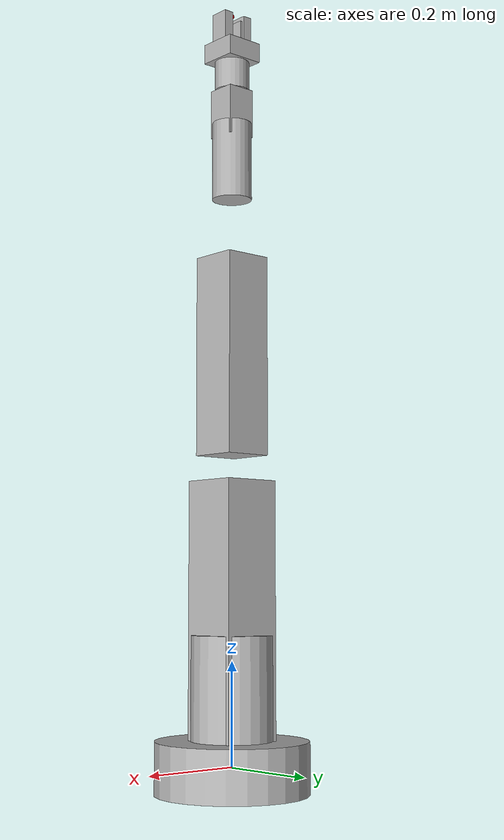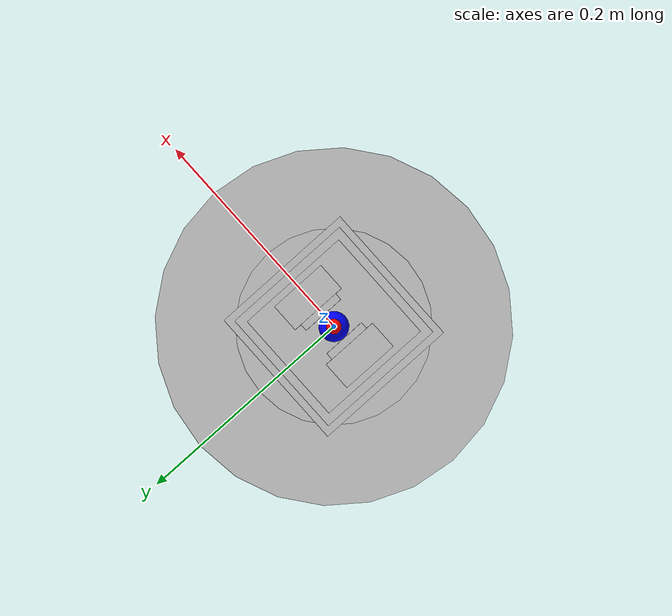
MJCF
<?xml version="1.0" ?>
<mujoco model="robot_arm">
  <compiler angle="radian" coordinate="local" inertiafromgeom="true"/>
  <option timestep="0.002" gravity="0 0 -9.81" iterations="50" solver="Newton" tolerance="1e-10"/>

  <default>
    <joint armature="1" damping="10" limited="true"/>
    <geom contype="1" conaffinity="1" friction="1 0.5 0.5" rgba="0.7 0.7 0.7 1"/>
    <motor ctrllimited="true" ctrlrange="-1 1"/>
  </default>

  <asset>
    <material name="arm_metal" rgba="0.8 0.8 0.9 1" metallic="0.9" roughness="0.3"/>
    <material name="joint_black" rgba="0.2 0.2 0.2 1" metallic="0.8" roughness="0.4"/>
    <material name="gripper_red" rgba="0.9 0.2 0.2 1" metallic="0.7" roughness="0.3"/>
    <material name="sensor_blue" rgba="0.2 0.2 0.9 1" metallic="0.5" roughness="0.2"/>
  </asset>

  <worldbody>
    <!-- Robot Base -->
    <body name="base" pos="0 0 0">
      <geom name="base_plate" type="cylinder" size="0.15 0.05" material="joint_black" mass="20"/>
      <inertial pos="0 0 0" mass="20" diaginertia="0.5 0.5 0.5"/>

      <!-- Joint 1: Shoulder Pan -->
      <body name="shoulder_pan" pos="0 0 0.1">
        <joint name="j1_shoulder_pan" type="hinge" axis="0 0 1" range="-3.14159 3.14159" damping="20"/>
        <geom name="shoulder_pan_link" type="cylinder" size="0.08 0.15" material="arm_metal" mass="5"/>

        <!-- Joint 2: Shoulder Tilt -->
        <body name="shoulder_tilt" pos="0 0 0.2">
          <joint name="j2_shoulder_tilt" type="hinge" axis="0 1 0" range="-2.356 0.785" damping="20"/>
          <geom name="shoulder_tilt_link" type="box" size="0.06 0.06 0.25" material="arm_metal" mass="4"/>

          <!-- Joint 3: Elbow -->
          <body name="elbow" pos="0 0 0.5">
            <joint name="j3_elbow" type="hinge" axis="0 1 0" range="-2.967 2.967" damping="15"/>
            <geom name="elbow_link" type="box" size="0.05 0.05 0.2" material="arm_metal" mass="3"/>

            <!-- Joint 4: Wrist Roll -->
            <body name="wrist_roll" pos="0 0 0.4">
              <joint name="j4_wrist_roll" type="hinge" axis="0 0 1" range="-3.14159 3.14159" damping="5"/>
              <geom name="wrist_roll_link" type="cylinder" size="0.04 0.08" material="joint_black" mass="1.5"/>

              <!-- Joint 5: Wrist Pitch -->
              <body name="wrist_pitch" pos="0 0 0.1">
                <joint name="j5_wrist_pitch" type="hinge" axis="0 1 0" range="-2.094 2.094" damping="5"/>
                <geom name="wrist_pitch_link" type="box" size="0.03 0.03 0.05" material="arm_metal" mass="1"/>

                <!-- Joint 6: Wrist Yaw -->
                <body name="wrist_yaw" pos="0 0 0.08">
                  <joint name="j6_wrist_yaw" type="hinge" axis="0 0 1" range="-3.14159 3.14159" damping="3"/>
                  <geom name="wrist_yaw_link" type="cylinder" size="0.035 0.03" material="joint_black" mass="0.8"/>

                  <!-- Gripper Mount -->
                  <body name="gripper_mount" pos="0 0 0.05">
                    <joint name="j7_gripper_base" type="hinge" axis="1 0 0" range="-3.14159 3.14159" damping="2"/>
                    <geom name="gripper_base" type="box" size="0.04 0.04 0.02" material="gripper_red" mass="0.5"/>

                    <!-- Camera Sensor -->
                    <site name="camera_site" pos="0 0 0.03" size="0.01" rgba="0 0 1 1"/>

                    <!-- Force/Torque Sensor -->
                    <site name="ft_sensor" pos="0 0 0" size="0.01" rgba="0 1 0 1"/>

                    <!-- Left Gripper Finger -->
                    <body name="gripper_left" pos="-0.025 0 0.04">
                      <joint name="gripper_left_joint" type="slide" axis="1 0 0" range="0 0.05" damping="1"/>
                      <geom name="gripper_left_finger" type="box" size="0.01 0.02 0.04" material="gripper_red" mass="0.1"/>
                      <geom name="gripper_left_pad" type="box" pos="0.01 0 0" size="0.005 0.015 0.03"
                            material="sensor_blue" contype="2" conaffinity="2" friction="2 1 1" mass="0.01"/>
                    </body>

                    <!-- Right Gripper Finger -->
                    <body name="gripper_right" pos="0.025 0 0.04">
                      <joint name="gripper_right_joint" type="slide" axis="-1 0 0" range="0 0.05" damping="1"/>
                      <geom name="gripper_right_finger" type="box" size="0.01 0.02 0.04" material="gripper_red" mass="0.1"/>
                      <geom name="gripper_right_pad" type="box" pos="-0.01 0 0" size="0.005 0.015 0.03"
                            material="sensor_blue" contype="2" conaffinity="2" friction="2 1 1" mass="0.01"/>
                    </body>

                    <!-- End Effector Reference Point -->
                    <site name="ee_site" pos="0 0 0.08" size="0.005" rgba="1 0 0 1"/>
                  </body>
                </body>
              </body>
            </body>
          </body>
        </body>
      </body>
    </body>
  </worldbody>

  <actuator>
    <!-- Joint Motors with Torque Limits -->
    <motor name="motor_j1" joint="j1_shoulder_pan" gear="100" ctrlrange="-2 2" forcerange="-100 100"/>
    <motor name="motor_j2" joint="j2_shoulder_tilt" gear="100" ctrlrange="-2 2" forcerange="-100 100"/>
    <motor name="motor_j3" joint="j3_elbow" gear="50" ctrlrange="-2 2" forcerange="-50 50"/>
    <motor name="motor_j4" joint="j4_wrist_roll" gear="20" ctrlrange="-2 2" forcerange="-20 20"/>
    <motor name="motor_j5" joint="j5_wrist_pitch" gear="20" ctrlrange="-2 2" forcerange="-20 20"/>
    <motor name="motor_j6" joint="j6_wrist_yaw" gear="20" ctrlrange="-2 2" forcerange="-20 20"/>
    <motor name="motor_j7" joint="j7_gripper_base" gear="10" ctrlrange="-2 2" forcerange="-10 10"/>

    <!-- Gripper Control -->
    <position name="gripper_left_pos" joint="gripper_left_joint" kp="200" ctrlrange="0 0.05" forcerange="-50 50"/>
    <position name="gripper_right_pos" joint="gripper_right_joint" kp="200" ctrlrange="0 0.05" forcerange="-50 50"/>
  </actuator>

  <sensor>
    <!-- Joint Position Sensors -->
    <jointpos name="j1_pos" joint="j1_shoulder_pan"/>
    <jointpos name="j2_pos" joint="j2_shoulder_tilt"/>
    <jointpos name="j3_pos" joint="j3_elbow"/>
    <jointpos name="j4_pos" joint="j4_wrist_roll"/>
    <jointpos name="j5_pos" joint="j5_wrist_pitch"/>
    <jointpos name="j6_pos" joint="j6_wrist_yaw"/>
    <jointpos name="j7_pos" joint="j7_gripper_base"/>
    <jointpos name="gripper_left_pos_sensor" joint="gripper_left_joint"/>
    <jointpos name="gripper_right_pos_sensor" joint="gripper_right_joint"/>

    <!-- Joint Velocity Sensors -->
    <jointvel name="j1_vel" joint="j1_shoulder_pan"/>
    <jointvel name="j2_vel" joint="j2_shoulder_tilt"/>
    <jointvel name="j3_vel" joint="j3_elbow"/>
    <jointvel name="j4_vel" joint="j4_wrist_roll"/>
    <jointvel name="j5_vel" joint="j5_wrist_pitch"/>
    <jointvel name="j6_vel" joint="j6_wrist_yaw"/>
    <jointvel name="j7_vel" joint="j7_gripper_base"/>

    <!-- Force Sensors -->
    <force name="gripper_left_force" site="gripper_left/geom"/>
    <force name="gripper_right_force" site="gripper_right/geom"/>
    <torque name="ft_torque" site="ft_sensor"/>

    <!-- Touch Sensors -->
    <touch name="gripper_left_touch" site="gripper_left/geom"/>
    <touch name="gripper_right_touch" site="gripper_right/geom"/>
  </sensor>
</mujoco>
